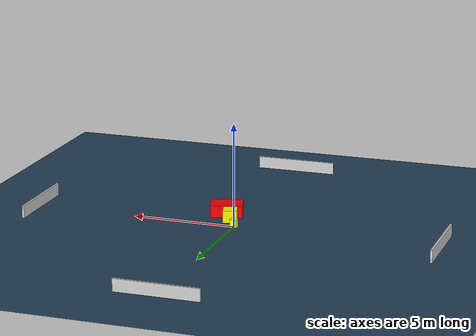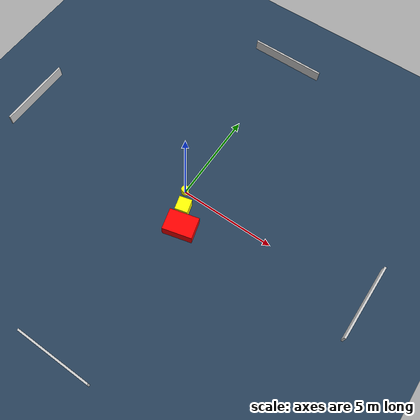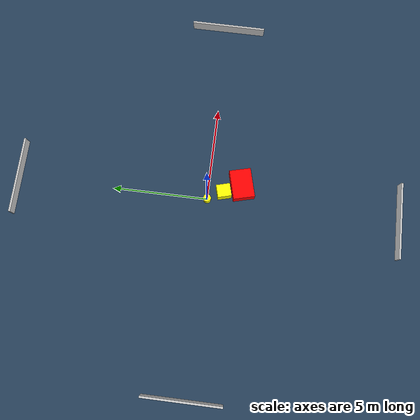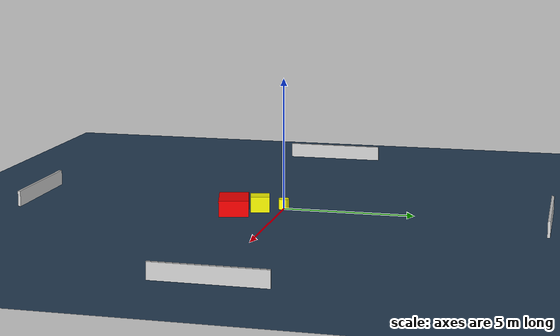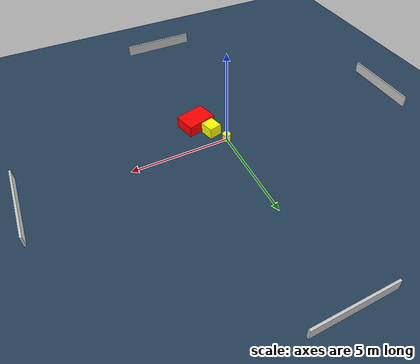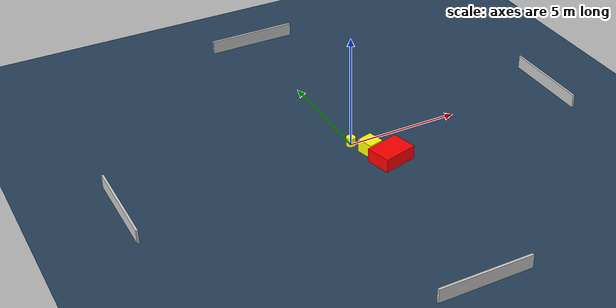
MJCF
<?xml version="1.0" ?>
<mujoco model="generated_environment">
  <option timestep="0.01" integrator="RK4" cone="elliptic"/>
  <default>
    <geom density="1"/>
  </default>
  <asset>
    <texture builtin="gradient" height="3072" name="skybox" rgb1="0.3 0.5 0.7" rgb2="0 0 0" type="skybox" width="512"/>
    <texture builtin="checker" height="300" name="groundplane" rgb1="0.2 0.3 0.4" rgb2="0.1 0.2 0.3" type="2d" width="300"/>
    <material name="groundplane" reflectance="0.2" texrepeat="5 5" texture="groundplane"/>
  </asset>
  <worldbody>
    <light dir="0 0 -1" directional="true" pos="0 0 1.5"/>
    <geom condim="3" friction="0.5 0.005 0.001" material="groundplane" name="floor" pos="0 0 0" size="0 0 0.05" type="plane"/>
    <body name="walls">
      <geom name="wall_1" condim="4" pos="-10.0 0.0 0.3" rgba="0.800000011920929 0.800000011920929 0.800000011920929 1.0" size="0.05 2.0 0.3" type="box"/>
      <geom name="wall_2" condim="4" pos="10.0 0.0 0.3" rgba="0.800000011920929 0.800000011920929 0.800000011920929 1.0" size="0.05 2.0 0.3" type="box"/>
      <geom name="wall_3" condim="4" pos="0.0 -10.0 0.3" rgba="0.800000011920929 0.800000011920929 0.800000011920929 1.0" size="2.0 0.05 0.3" type="box"/>
      <geom name="wall_4" condim="4" pos="0.0 10.0 0.3" rgba="0.800000011920929 0.800000011920929 0.800000011920929 1.0" size="2.0 0.05 0.3" type="box"/>
    </body>
    <body name="robot">
      <joint name="joint_x" type="slide" pos="0 0 0" axis="1 0 0"/>
      <joint name="joint_y" type="slide" pos="0 0 0" axis="0 1 0"/>
      <geom name="robot" type="cylinder" pos="0.0 0.0 0.2" size="0.2 0.2 0.0" mass="5.0" friction="1.0 0.005 0.0001" condim="4" rgba="1.0 1.0 0.0 1.0"/>
    </body>
    <body name="obstacle_1_movable">
      <geom name="obstacle_1_movable" condim="4" pos="0.46633079273482814 -0.8178567444494594 0.3" euler="0 0 105.08414574140448" friction="0.0 0.005 0.001" rgba="1.0 1.0 0.0 1.0" size="0.36248320176674675 0.33503199593543376 0.3" type="box" mass="0.1"/>
      <joint type="free"/>
    </body>
    <body name="obstacle_2_static">
      <geom name="obstacle_2_static" condim="4" pos="0.9416436157135607 -1.718100026873138 0.3" euler="0 0 284.6117994318664" friction="0.0 0.005 0.001" rgba="1.0 0.0 0.0 1.0" size="0.5606504010582917 0.767953211424858 0.3" type="box"/>
    </body>
  </worldbody>
  <actuator>
    <motor name="actuator_x" joint="joint_x" gear="1" ctrlrange="-1 1"/>
    <motor name="actuator_y" joint="joint_y" gear="1" ctrlrange="-1 1"/>
  </actuator>
</mujoco>
